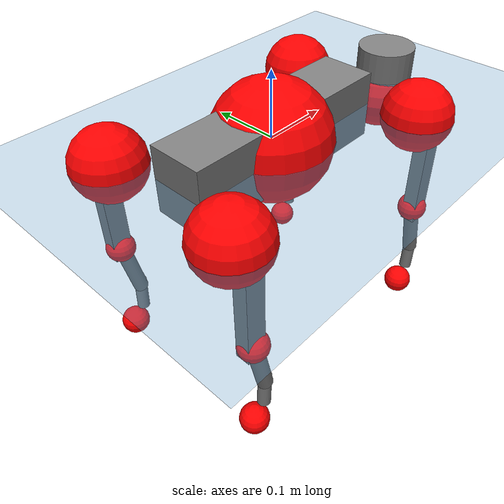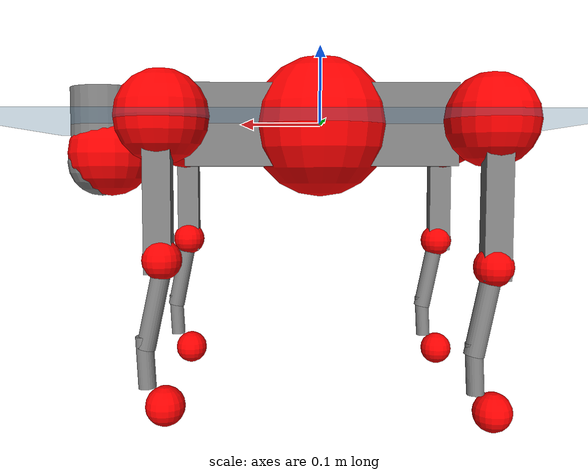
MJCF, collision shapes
<mujoco model="go2">
  <compiler angle="radian" assetdir="assets" balanceinertia="true" inertiafromgeom="false"/>

  <option timestep="0.005" density="1.2" viscosity="2e-05"/>

  <size nkey="1"/>

  <visual>
    <quality shadowsize="8192"/>
    <map shadowclip="0.5"/>
  </visual>

  <default>
    <default class="/">
      <geom contype="0" conaffinity="0" group="1" solref="-1000 -80"/>
      <site size="0.01 0.005 0.005" group="5"/>
      <general forcelimited="true" biastype="affine" gainprm="20" biasprm="0 -20 -0.5"/>
      <default class="go2">
        <joint armature="0.01" damping="0.01" frictionloss="0.2"/>
        <geom condim="1" margin="0.001"/>
        <default class="visual">
          <geom type="mesh" group="2"/>
        </default>
        <default class="collision">
          <geom group="3"/>
          <default class="foot">
            <geom size="0.022 0 0" condim="6" priority="1" friction="0.8 0.02 0.01" solimp="0.015 1 0.022"/>
          </default>
        </default>
        <default class="reward_collision_sphere">
          <geom group="5" rgba="1 0 0 1"/>
        </default>
      </default>
    </default>
  </default>

  <asset>
    <texture type="skybox" colorspace="auto" name="//unnamed_texture_0" builtin="gradient" rgb1="0.95 0.95 0.95" rgb2="0.95 0.95 0.95" width="100" height="600"/>
    <texture type="2d" colorspace="auto" name="texplane" builtin="checker" rgb1="0.345 0.575 0.748" rgb2="0.345 0.575 0.748" markrgb="1 1 1" width="512" height="512"/>
    <material name="MatPlane" class="/" texture="texplane" texuniform="true" texrepeat="2 2" specular="0.9"/>
    <material name="metal" class="/" rgba="0.9 0.95 0.95 1"/>
    <material name="black" class="/" rgba="0 0 0 1"/>
    <material name="white" class="/"/>
    <material name="gray" class="/" rgba="0.671705 0.692426 0.77427 1"/>
    <mesh name="base_0" class="/" file="base_0.obj"/>
    <mesh name="base_1" class="/" file="base_1.obj"/>
    <mesh name="base_2" class="/" file="base_2.obj"/>
    <mesh name="base_3" class="/" file="base_3.obj"/>
    <mesh name="base_4" class="/" file="base_4.obj"/>
    <mesh name="hip_0" class="/" file="hip_0.obj"/>
    <mesh name="hip_1" class="/" file="hip_1.obj"/>
    <mesh name="thigh_0" class="/" file="thigh_0.obj"/>
    <mesh name="thigh_1" class="/" file="thigh_1.obj"/>
    <mesh name="thigh_mirror_0" class="/" file="thigh_mirror_0.obj"/>
    <mesh name="thigh_mirror_1" class="/" file="thigh_mirror_1.obj"/>
    <mesh name="calf_0" class="/" file="calf_0.obj"/>
    <mesh name="calf_1" class="/" file="calf_1.obj"/>
    <mesh name="calf_mirror_0" class="/" file="calf_mirror_0.obj"/>
    <mesh name="calf_mirror_1" class="/" file="calf_mirror_1.obj"/>
    <mesh name="foot" class="/" file="foot.obj"/>
  </asset>

  <worldbody>
    <geom name="floor" class="/" size="100 100 0.125" type="plane" group="0" material="MatPlane"/>
    <light name="toplight_shadow" class="/" pos="0 0 5" dir="0.0990148 0.0990148 -0.990148" type="directional" ambient="0.04 0.04 0.04" diffuse="0.55 0.55 0.55" specular="0.12 0.12 0.12"/>
    <light name="toplight_fill" class="/" pos="0 0 5" dir="0.0990148 0.0990148 -0.990148" type="directional" castshadow="false" ambient="0.04 0.04 0.04" diffuse="0.3 0.3 0.3" specular="0.08 0.08 0.08"/>
    <body name="trunk" childclass="go2" pos="-0.000252188 0.000184117 -0.00191277" quat="1 0.000273648 0.000328796 -0.000230905">
      <inertial pos="0.0194042 -0.00053954 -0.00280142" quat="-0.000596027 0.713616 -0.00121417 0.700536" mass="4.81225" diaginertia="0.0802203 0.0771844 0.00620111"/>
      <joint name="//unnamed_joint_0" type="free" armature="0" damping="0" frictionloss="0"/>
      <geom name="//unnamed_geom_1" class="visual" material="black" mesh="base_0"/>
      <geom name="//unnamed_geom_2" class="visual" material="black" mesh="base_1"/>
      <geom name="//unnamed_geom_3" class="visual" material="black" mesh="base_2"/>
      <geom name="//unnamed_geom_4" class="visual" material="white" mesh="base_3"/>
      <geom name="//unnamed_geom_5" class="visual" material="gray" mesh="base_4"/>
      <geom name="trunk_1" class="collision" size="0.167645 0.0416661 0.0508015" type="box"/>
      <geom name="trunk_2" class="collision" size="0.0445627 0.0401064" pos="0.27056 0 0.00763589" type="cylinder"/>
      <geom name="trunk_3" class="collision" size="0.0418889" pos="0.278154 0 -0.0458153"/>
      <geom name="//unnamed_geom_9" class="reward_collision_sphere" size="0.0891254"/>
      <geom name="//unnamed_geom_10" class="reward_collision_sphere" size="0.0534752" pos="0.265813 0 -0.0343615"/>
      <site name="imu" pos="-0.0114023 -0.0131785 0.0456584" size="0.00891254"/>
      <camera name="track" pos="0 -1.92168 0" quat="0.707107 0.707107 0 0" mode="trackcom"/>
      <camera name="ego_camera" pos="0.296192 0 0.0343615" quat="-0.5 -0.5 0.5 0.5"/>
      <body name="FL_hip" pos="0.183261 0.042349 0.00432952" quat="1 -9.18305e-05 -0.000339128 0.000757254">
        <inertial pos="-0.00572104 0.00304767 -0.00285654" quat="0.494182 0.500188 0.506185 0.499373" mass="0.454189" diaginertia="0.000660842 0.000458233 0.000124923"/>
        <joint name="FL_hip_joint" pos="0 0 0" axis="0.999982 -0.00243727 -0.00545828" range="-1.10406 1.05486" armature="0.0100624" damping="0.0195843" frictionloss="0.169789"/>
        <geom name="//unnamed_geom_11" class="visual" material="metal" mesh="hip_0"/>
        <geom name="//unnamed_geom_12" class="visual" material="gray" mesh="hip_1"/>
        <geom name="//unnamed_geom_13" class="collision" size="0.0409977 0.0178251" pos="0 0.0768671 0" quat="0.707107 0.707107 0 0" type="cylinder"/>
        <geom name="//unnamed_geom_14" class="reward_collision_sphere" size="0.0534752" pos="0 0.0672587 0"/>
        <body name="FL_thigh" pos="0.000946391 0.0905977 0.0033222" quat="1 -0.000140527 -8.61774e-06 0.000456149">
          <inertial pos="-0.00257376 -0.021189 -0.0275491" quat="0.82891 0.0872974 -0.0163531 0.552287" mass="0.831878" diaginertia="0.00455138 0.00484664 0.000230106"/>
          <joint name="FL_thigh_joint" pos="0 0 0" axis="-0.0134698 0.999909 0.000655809" range="-1.61733 3.54882" armature="0.00976192" damping="0" frictionloss="0.176921"/>
          <geom name="//unnamed_geom_15" class="visual" material="metal" mesh="thigh_0"/>
          <geom name="//unnamed_geom_16" class="visual" material="gray" mesh="thigh_1"/>
          <geom name="//unnamed_geom_17" class="collision" size="0.0949185 0.0109179 0.0151513" pos="0 0 -0.0813222" quat="0.707107 0 0.707107 0" type="box"/>
          <body name="FL_calf" pos="-0.00370185 0.00161845 -0.161185" quat="1 -6.4891e-05 1.52207e-06 -7.46124e-05">
            <inertial pos="0.00677791 -0.000430661 -0.107352" quat="0.7104 0.00260401 -0.00484342 0.703777" mass="0.161747" diaginertia="0.0011464 0.00121385 1.34044e-05"/>
            <joint name="FL_calf_joint" pos="0 0 0" axis="-0.00105194 0.999994 -0.00325354" stiffness="0.00165488" range="-2.72165 -0.857359" armature="0.00774564" damping="0.0116851" frictionloss="0.161399"/>
            <geom name="//unnamed_geom_18" class="visual" material="gray" mesh="calf_0"/>
            <geom name="//unnamed_geom_19" class="visual" material="black" mesh="calf_1"/>
            <geom name="FL_calf0" class="collision" size="0.010695 0.0534752" pos="0.00759466 0 -0.0458153" quat="0.994493 0 -0.104807 0" type="cylinder"/>
            <geom name="//unnamed_geom_21" class="collision" size="0.00980379 0.0289657" pos="0.0189866 0 -0.113011" quat="0.999688 0 0.0249974 0" type="cylinder"/>
            <geom name="//unnamed_geom_22" class="visual" pos="0 0 -0.162644" quat="1 0 0 0" material="black" mesh="foot"/>
            <geom name="FL_foot" class="foot" size="0.0174083" pos="-0.00189866 0 -0.162644"/>
            <geom name="//unnamed_geom_24" class="reward_collision_sphere" size="0.0222813"/>
            <geom name="//unnamed_geom_25" class="reward_collision_sphere" size="0.0222813" pos="-0.00189866 0 -0.162644"/>
            <site name="FL_foot" class="foot" pos="-0.00189866 0 -0.162644" size="0.00891254"/>
          </body>
        </body>
      </body>
      <body name="FR_hip" pos="0.187342 -0.0474821 0.00189227" quat="1 -4.43152e-05 -0.000677744 -0.000316354">
        <inertial pos="-0.00534226 -0.00192047 -0.00158106" quat="0.498781 0.505282 0.49965 0.496245" mass="0.492555" diaginertia="0.000684304 0.000469822 0.000124464"/>
        <joint name="FR_hip_joint" pos="0 0 0" axis="0.999992 0.00359077 -0.0020185" stiffness="0.0139185" range="-1.02141 1.05107" armature="0.00929731" damping="0.0238898" frictionloss="0.157693"/>
        <geom name="//unnamed_geom_26" class="visual" pos="0 1.71836e-09 7.37041e-08" quat="4.63268e-05 1 0 0" material="metal" mesh="hip_0"/>
        <geom name="//unnamed_geom_27" class="visual" pos="0 2.78567e-09 -1.82298e-07" quat="4.63268e-05 1 0 0" material="gray" mesh="hip_1"/>
        <geom name="//unnamed_geom_28" class="collision" size="0.0409977 0.0178251" pos="0 -0.0768671 0" quat="0.707107 0.707107 0 0" type="cylinder"/>
        <geom name="//unnamed_geom_29" class="reward_collision_sphere" size="0.0534752" pos="0 -0.0672587 0"/>
        <body name="FR_thigh" pos="-0.000956106 -0.0897997 0.00155616" quat="0.999999 -0.000586886 0.000961181 -0.000623392">
          <inertial pos="-0.00453345 0.0208757 -0.0250043" quat="0.551552 -0.0199564 0.0848323 0.829576" mass="0.774171" diaginertia="0.00451474 0.0045395 0.000227986"/>
          <joint name="FR_thigh_joint" pos="0 0 0" axis="-0.00737977 -0.99997 0.00248939" range="-3.52189 1.57237" armature="0.00850657" damping="0.00164676" frictionloss="0.162752"/>
          <geom name="//unnamed_geom_30" class="visual" material="metal" mesh="thigh_mirror_0"/>
          <geom name="//unnamed_geom_31" class="visual" material="gray" mesh="thigh_mirror_1"/>
          <geom name="//unnamed_geom_32" class="collision" size="0.0949185 0.0109179 0.0151513" pos="0 0 -0.0813222" quat="0.707107 0 0.707107 0" type="box"/>
          <body name="FR_calf" pos="-0.000260817 0.00255703 -0.159623" quat="1 -0.000217318 3.15527e-05 -0.000692083">
            <inertial pos="0.00348982 -0.00112331 -0.109064" quat="0.706981 -0.00368827 0.0117621 0.707125" mass="0.17494" diaginertia="0.0011862 0.00121423 1.39737e-05"/>
            <joint name="FR_calf_joint" pos="0 0 0" axis="-0.012919 -0.999912 0.00301674" range="0.881489 2.70129" armature="0.00898725" damping="0.00802852" frictionloss="0.192136"/>
            <geom name="//unnamed_geom_33" class="visual" material="gray" mesh="calf_mirror_0"/>
            <geom name="//unnamed_geom_34" class="visual" material="black" mesh="calf_mirror_1"/>
            <geom name="FR_calf0" class="collision" size="0.0115863 0.0534752" pos="0.00949332 0 -0.0458153" quat="0.995004 0 -0.0998334 0" type="cylinder"/>
            <geom name="//unnamed_geom_36" class="collision" size="0.00980379 0.0289657" pos="0.0189866 0 -0.113011" quat="0.999688 0 0.0249974 0" type="cylinder"/>
            <geom name="//unnamed_geom_37" class="visual" pos="0 0 -0.162644" quat="1 0 0 0" material="black" mesh="foot"/>
            <geom name="FR_foot" class="foot" size="0.0216866" pos="-0.00189866 0 -0.162644"/>
            <geom name="//unnamed_geom_39" class="reward_collision_sphere" size="0.0222813"/>
            <geom name="//unnamed_geom_40" class="reward_collision_sphere" size="0.0222813" pos="-0.00189866 0 -0.162644"/>
            <site name="FR_foot" class="foot" pos="-0.00189866 0 -0.162644" size="0.00891254"/>
          </body>
        </body>
      </body>
      <body name="RL_hip" pos="-0.18553 0.0462847 0.000117168" quat="1 -1.64666e-05 -0.000297603 -0.000232919">
        <inertial pos="0.00236532 0.00121218 0.00138581" quat="0.508087 0.50192 0.499387 0.490445" mass="0.491736" diaginertia="0.000704887 0.000502833 0.000120549"/>
        <joint name="RL_hip_joint" pos="0 0 0" axis="-0.9999 -0.0128318 0.00591281" range="-1.01231 0.991663" armature="0.00912749" damping="0" frictionloss="0.202453"/>
        <geom name="//unnamed_geom_41" class="visual" pos="-1.61812e-09 0 -3.17189e-07" quat="4.63268e-05 0 1 0" material="metal" mesh="hip_0"/>
        <geom name="//unnamed_geom_42" class="visual" pos="-2.62317e-09 0 -2.81301e-07" quat="4.63268e-05 0 1 0" material="gray" mesh="hip_1"/>
        <geom name="//unnamed_geom_43" class="collision" size="0.0409977 0.0178251" pos="0 0.0768671 0" quat="0.707107 0.707107 0 0" type="cylinder"/>
        <geom name="//unnamed_geom_44" class="reward_collision_sphere" size="0.0534752" pos="0 0.0672587 0"/>
        <body name="RL_thigh" pos="0.00021175 0.0905712 -0.000268173" quat="0.999999 0.000228244 -0.00116438 -0.000728844">
          <inertial pos="-0.00597119 -0.0232604 -0.0248843" quat="0.832976 0.072988 -0.0154886 0.548255" mass="0.801483" diaginertia="0.00451094 0.00461542 0.00023536"/>
          <joint name="RL_thigh_joint" pos="0 0 0" axis="0.0056892 0.999932 0.0101974" stiffness="0.0138417" range="-0.523541 4.55057" armature="0.0089198" damping="0" frictionloss="0.180853"/>
          <geom name="//unnamed_geom_45" class="visual" material="metal" mesh="thigh_0"/>
          <geom name="//unnamed_geom_46" class="visual" material="gray" mesh="thigh_1"/>
          <geom name="//unnamed_geom_47" class="collision" size="0.0949185 0.0109179 0.0151513" pos="0 0 -0.0813222" quat="0.707107 0 0.707107 0" type="box"/>
          <body name="RL_calf" pos="0.00137128 -0.00145173 -0.162259" quat="1 -0.000347073 0.000204984 0.000436932">
            <inertial pos="0.00745063 -0.00282235 -0.109939" quat="0.710673 0.0015209 -0.00437074 0.703507" mass="0.165647" diaginertia="0.00108586 0.00116895 1.31093e-05"/>
            <joint name="RL_calf_joint" pos="0 0 0" axis="6.36417e-05 0.999962 0.00875897" stiffness="0.000188988" range="-2.73043 -0.794664" armature="0.00874746" damping="0.0125621" frictionloss="0.202896"/>
            <geom name="//unnamed_geom_48" class="visual" material="gray" mesh="calf_0"/>
            <geom name="//unnamed_geom_49" class="visual" material="black" mesh="calf_1"/>
            <geom name="RL_calf0" class="collision" size="0.0115863 0.0534752" pos="0.00949332 0 -0.0458153" quat="0.995004 0 -0.0998334 0" type="cylinder"/>
            <geom name="//unnamed_geom_51" class="collision" size="0.00980379 0.0289657" pos="0.0189866 0 -0.113011" quat="0.999688 0 0.0249974 0" type="cylinder"/>
            <geom name="//unnamed_geom_52" class="visual" pos="0 0 -0.162644" quat="1 0 0 0" material="black" mesh="foot"/>
            <geom name="RL_foot" class="foot" size="0.0190724" pos="-0.00189866 0 -0.162644"/>
            <geom name="//unnamed_geom_54" class="reward_collision_sphere" size="0.0222813"/>
            <geom name="//unnamed_geom_55" class="reward_collision_sphere" size="0.0222813" pos="-0.00189866 0 -0.162644"/>
            <site name="RL_foot" class="foot" pos="-0.00189866 0 -0.162644" size="0.00891254"/>
          </body>
        </body>
      </body>
      <body name="RR_hip" pos="-0.183743 -0.0428201 0.00190005" quat="1 1.59952e-05 1.83806e-05 -0.000189511">
        <inertial pos="0.00660907 0.00111893 -0.0027361" quat="0.497921 0.501724 0.500139 0.500208" mass="0.454139" diaginertia="0.000682349 0.000458196 0.000120663"/>
        <joint name="RR_hip_joint" pos="0 0 0" axis="-0.999824 0.0135778 0.0129742" range="-1.06401 1.08178" armature="0.00867672" damping="0.000704409" frictionloss="0.199429"/>
        <geom name="//unnamed_geom_56" class="visual" pos="1.61852e-09 1.71836e-09 -3.90893e-07" quat="2.14617e-09 4.63268e-05 4.63268e-05 -1" material="metal" mesh="hip_0"/>
        <geom name="//unnamed_geom_57" class="visual" pos="2.62218e-09 2.78567e-09 -9.90029e-08" quat="2.14617e-09 4.63268e-05 4.63268e-05 -1" material="gray" mesh="hip_1"/>
        <geom name="//unnamed_geom_58" class="collision" size="0.0409977 0.0178251" pos="0 -0.0768671 0" quat="0.707107 0.707107 0 0" type="cylinder"/>
        <geom name="//unnamed_geom_59" class="reward_collision_sphere" size="0.0534752" pos="0 -0.0672587 0"/>
        <body name="RR_thigh" pos="4.05989e-05 -0.0920469 0.000987727" quat="1 -0.000163155 0.000119297 0.000239435">
          <inertial pos="-0.00337268 0.0197449 -0.0223867" quat="0.557242 -0.0190878 0.0849555 0.825772" mass="0.8287" diaginertia="0.00472824 0.00494194 0.00023346"/>
          <joint name="RR_thigh_joint" pos="0 0 0" axis="0.00651122 -0.999964 0.00539323" stiffness="0.00402768" range="-4.48304 0.526784" armature="0.00816101" damping="0.020773" frictionloss="0.1997"/>
          <geom name="//unnamed_geom_60" class="visual" material="metal" mesh="thigh_mirror_0"/>
          <geom name="//unnamed_geom_61" class="visual" material="gray" mesh="thigh_mirror_1"/>
          <geom name="//unnamed_geom_62" class="collision" size="0.0949185 0.0109179 0.0151513" pos="0 0 -0.0813222" quat="0.707107 0 0.707107 0" type="box"/>
          <body name="RR_calf" pos="0.00294294 -0.0013217 -0.162779" quat="1 -0.000576518 -0.000396348 0.000557864">
            <inertial pos="0.00860581 0.00155619 -0.107549" quat="0.703461 -0.00480485 0.00519248 0.710698" mass="0.164779" diaginertia="0.00112754 0.00112338 1.30329e-05"/>
            <joint name="RR_calf_joint" pos="0 0 0" axis="9.49502e-05 -1 0.000168292" range="0.861075 2.73101" armature="0.00925803" damping="0.0144165" frictionloss="0.184129"/>
            <geom name="//unnamed_geom_63" class="visual" material="gray" mesh="calf_mirror_0"/>
            <geom name="//unnamed_geom_64" class="visual" material="black" mesh="calf_mirror_1"/>
            <geom name="RR_calf0" class="collision" size="0.0115863 0.0534752" pos="0.00949332 0 -0.0458153" quat="0.995004 0 -0.0998334 0" type="cylinder"/>
            <geom name="//unnamed_geom_66" class="collision" size="0.00980379 0.0289657" pos="0.0189866 0 -0.113011" quat="0.999688 0 0.0249974 0" type="cylinder"/>
            <geom name="//unnamed_geom_67" class="visual" pos="0 0 -0.162644" quat="1 0 0 0" material="black" mesh="foot"/>
            <geom name="RR_foot" class="foot" size="0.020681" pos="-0.00189866 0 -0.162644"/>
            <geom name="//unnamed_geom_69" class="reward_collision_sphere" size="0.0222813"/>
            <geom name="//unnamed_geom_70" class="reward_collision_sphere" size="0.0222813" pos="-0.00189866 0 -0.162644"/>
            <site name="RR_foot" class="foot" pos="-0.00189866 0 -0.162644" size="0.00891254"/>
          </body>
        </body>
      </body>
    </body>
  </worldbody>

  <contact>
    <pair class="/" geom1="floor" geom2="FL_foot" name="//unnamed_contact_0"/>
    <pair class="/" geom1="floor" geom2="FR_foot" name="//unnamed_contact_1"/>
    <pair class="/" geom1="floor" geom2="RL_foot" name="//unnamed_contact_2"/>
    <pair class="/" geom1="floor" geom2="RR_foot" name="//unnamed_contact_3"/>
  </contact>

  <actuator>
    <general name="FL_hip" class="/" joint="FL_hip_joint" forcerange="-19.0736 19.0736" gainprm="17.7143" biasprm="0 -17.7143 -0.477528"/>
    <general name="FL_thigh" class="/" joint="FL_thigh_joint" forcerange="-22.3241 22.3241" gainprm="17.7143" biasprm="0 -17.7143 -0.477528"/>
    <general name="FL_calf" class="/" joint="FL_calf_joint" forcerange="-43.5474 43.5474" gainprm="17.7143" biasprm="0 -17.7143 -0.477528"/>
    <general name="FR_hip" class="/" joint="FR_hip_joint" forcerange="-19.2957 19.2957" gainprm="17.7143" biasprm="0 -17.7143 -0.477528"/>
    <general name="FR_thigh" class="/" joint="FR_thigh_joint" forcerange="-23.1971 23.1971" gainprm="17.7143" biasprm="0 -17.7143 -0.477528"/>
    <general name="FR_calf" class="/" joint="FR_calf_joint" forcerange="-36.0885 36.0885" gainprm="17.7143" biasprm="0 -17.7143 -0.477528"/>
    <general name="RL_hip" class="/" joint="RL_hip_joint" forcerange="-22.8197 22.8197" gainprm="17.7143" biasprm="0 -17.7143 -0.477528"/>
    <general name="RL_thigh" class="/" joint="RL_thigh_joint" forcerange="-21.1551 21.1551" gainprm="17.7143" biasprm="0 -17.7143 -0.477528"/>
    <general name="RL_calf" class="/" joint="RL_calf_joint" forcerange="-36.2976 36.2976" gainprm="17.7143" biasprm="0 -17.7143 -0.477528"/>
    <general name="RR_hip" class="/" joint="RR_hip_joint" forcerange="-22.1563 22.1563" gainprm="17.7143" biasprm="0 -17.7143 -0.477528"/>
    <general name="RR_thigh" class="/" joint="RR_thigh_joint" forcerange="-20.2379 20.2379" gainprm="17.7143" biasprm="0 -17.7143 -0.477528"/>
    <general name="RR_calf" class="/" joint="RR_calf_joint" forcerange="-38.8398 38.8398" gainprm="17.7143" biasprm="0 -17.7143 -0.477528"/>
  </actuator>

  <sensor>
    <gyro site="imu" name="imu_angular_velocity"/>
    <velocimeter site="imu" name="imu_linear_velocity"/>
    <framelinvel objtype="site" objname="FL_foot" name="FL_foot_global_linear_velocity"/>
    <framelinvel objtype="site" objname="FR_foot" name="FR_foot_global_linear_velocity"/>
    <framelinvel objtype="site" objname="RL_foot" name="RL_foot_global_linear_velocity"/>
    <framelinvel objtype="site" objname="RR_foot" name="RR_foot_global_linear_velocity"/>
  </sensor>

  <keyframe>
    <key name="home" qpos="0 0 0.325 1 0 0 0 0.1 0.8 -1.5 -0.1 -0.8 1.5 -0.1 0.8 -1.5 0.1 -0.8 1.5"/>
  </keyframe>
</mujoco>
